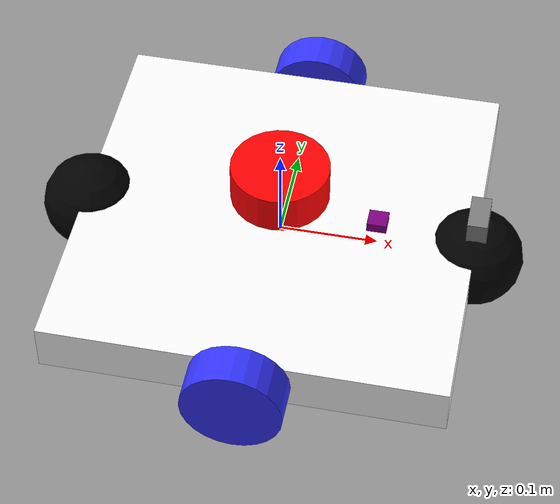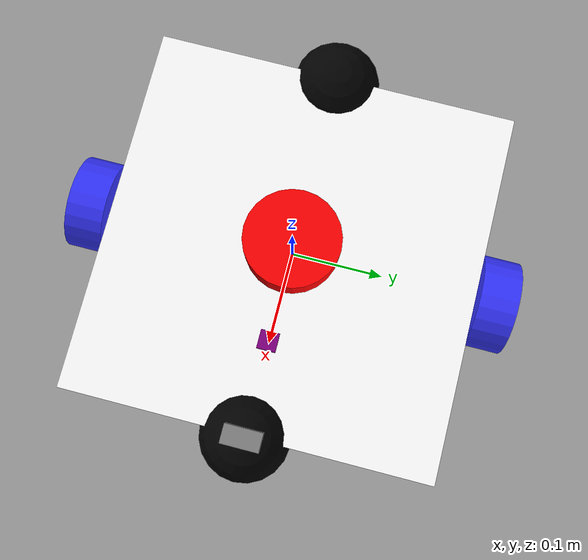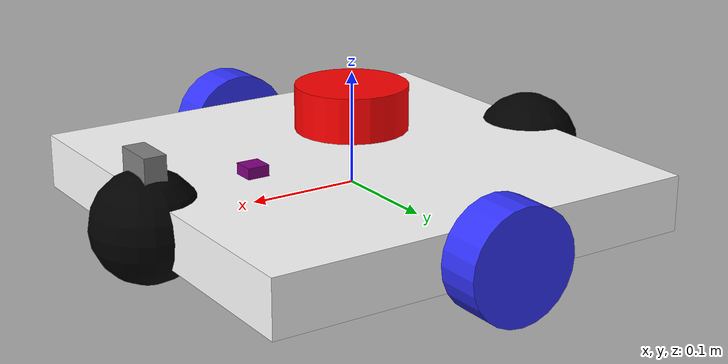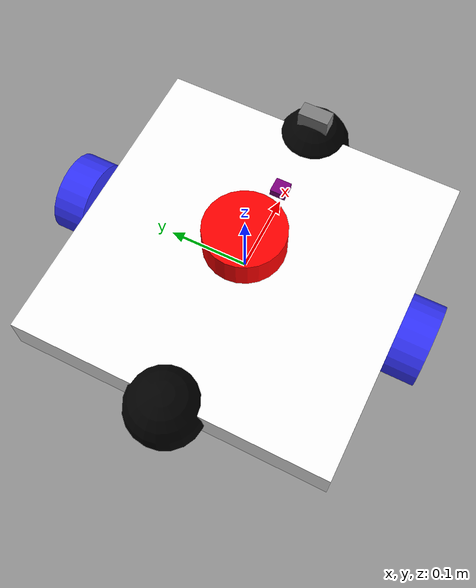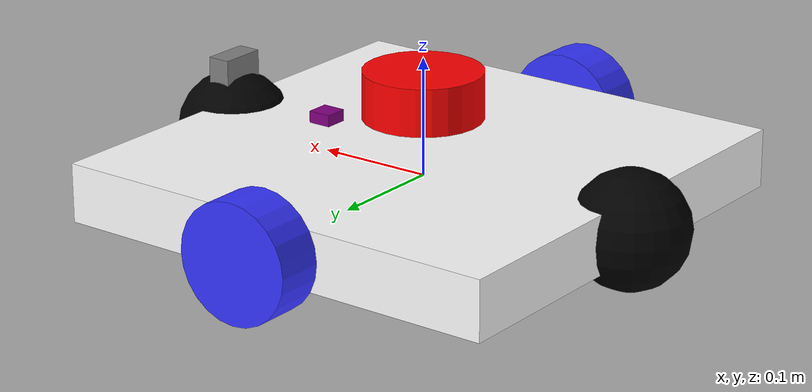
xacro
<?xml version="1.0"?>
<robot xmlns:xacro="http://www.ros.org/wiki/xacro" name="zulu_robot">

    <!-- Example link -->
    <xacro:include filename="properties.xacro"/>
    <xacro:include filename="robot_core.xacro"/>

    <!-- Lidar sensor -->
    <xacro:include filename="lidar.xacro"/>

    <!-- ros2_control -->
    <xacro:include filename="ros2_control.xacro"/>

    <!-- IMU -->
    <xacro:include filename="imu.xacro"/>

    <!-- CAMERA -->
    <xacro:include filename="camera.xacro"/>

</robot>

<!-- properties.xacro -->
<robot xmlns:xacro="http://www.ros.org/wiki/xacro">

    <!-- Colores Originales -->
    <material name="white">
        <color rgba="1 1 1 1"/>
    </material>

    <material name="orange">
        <color rgba="1 0.3 0.1 1"/>
    </material>

    <material name="blue">
        <color rgba="0.2 0.2 1 1"/>
    </material>

    <material name="black">
        <color rgba="0 0 0 1"/>
    </material>

    <material name="red">
        <color rgba="1 0 0 1"/>
    </material>

    <material name="purple">
        <color rgba="0.5 0.0 0.5 1"/>
    </material>

    <material name="pink">
        <color rgba="1.0 0.4 0.7 1"/>
    </material>

    <material name="green">
        <color rgba="0.0 0.8 0.0 1"/>
    </material>

    <material name="yellow">
        <color rgba="1.0 1.0 0.0 1"/>
    </material>

    <material name="gray">
        <color rgba="0.5 0.5 0.5 1"/>
    </material>

    <material name="cyan">
        <color rgba="0.0 1.0 1.0 1"/>
    </material>

    <material name="brown">
        <color rgba="0.6 0.4 0.2 1"/>
    </material>

</robot>

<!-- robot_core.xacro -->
<robot xmlns:xacro="http://www.ros.org/wiki/xacro">

    <!-- Example link -->
    <xacro:include filename="inertial_macros.xacro"/>

    <xacro:property name="rad_w" value="0.05"/>
    <xacro:property name="le_w" value="0.04"/>
    <xacro:property name="ly" value="0.4"/>
    <xacro:property name="lx" value="0.4"/>
    <xacro:property name="lz" value="0.05"/>

    <!-- Example link -->
    <link name="base_link">
    </link>

    <joint name="base_link_joint" type="fixed">
        <parent link="base_link"/>
        <child link="chassis"/>
        <origin xyz="0 0 0"/>
    </joint>

    <!-- chassis link -->
    <link name="chassis">
        <visual>
            <origin xyz="0 0 0"/>
            <geometry>
                <box size="${lx} ${ly} ${lz}"/>
            </geometry>
            <material name="white"/>
        </visual>
        <collision>
            <origin xyz="0 0 0"/>
            <geometry>
               <box size="${lx} ${ly} ${lz}"/>
            </geometry>
        </collision>
        <xacro:inertial_box mass="5.0" x="${lx}" y="${ly}" z="${lz}">
            <origin xyz="0 0 0" rpy="0 0 0"/>
        </xacro:inertial_box>
    </link>

    <!-- left wheel joint -->
    <joint name="left_wheel_joint" type="continuous">
        <parent link="chassis"/>
        <child link="left_wheel"/>
        <origin xyz="0 ${ly/2+le_w/2} 0.0" rpy="-${pi/2} 0 0"/>
        <axis xyz="0 0 1"/>
        <dynamics damping="0.2" friction="0.0"/>
    </joint>

    <!-- left wheel link -->
    <link name="left_wheel">
        <visual>
            <geometry>
                <cylinder radius="${rad_w}" length="${le_w}"/>
            </geometry>
            <material name="blue"/>
        </visual>
        <collision>
            <geometry>
                  <sphere radius="${rad_w}" />
            </geometry>

        </collision>
        <xacro:inertial_cylinder mass="0.1" length="${le_w}" radius="${rad_w}">
            <origin xyz="0 0 0" rpy="0 0 0"/>
        </xacro:inertial_cylinder>
    </link>

    <!-- right wheel joint -->
    <joint name="right_wheel_joint" type="continuous">
        <parent link="chassis"/>
        <child link="right_wheel"/>
        <origin xyz="0 -${ly/2+le_w/2} 0.0" rpy="${pi/2} 0 0"/>
        <axis xyz="0 0 -1"/>
        <dynamics damping="0.2" friction="0.0"/>
    </joint>

    <!-- right wheel link -->
    <link name="right_wheel">
        <visual>
            <geometry>
                <cylinder radius="${rad_w}" length="${le_w}"/>
            </geometry>
            <material name="blue"/>
        </visual>
        <collision>
            <geometry>
                  <sphere radius="${rad_w}" />
            </geometry>

        </collision>
        <xacro:inertial_cylinder mass="0.1" length="${le_w}" radius="${rad_w}">
            <origin xyz="0 0 0" rpy="0 0 0"/>
        </xacro:inertial_cylinder>
    </link>

    <!-- caster wheel joint -->
    <joint name="caster_front_wheel_joint" type="fixed">
        <parent link="chassis"/>
        <child link="caster_front_wheel"/>
        <origin xyz="${lx/2} 0 0.0"/>
    </joint>

    <!-- left wheel link -->
    <link name="caster_front_wheel">
        <visual>
            <geometry>
                <sphere radius="0.049"/>
            </geometry>
            <material name="black"/>
        </visual>
        <collision>
            <geometry>
                <sphere radius="0.049"/>
            </geometry>
            <surface>
                <friction>
                <ode>
                    <mu>0.01</mu>
                    <mu2>0.01</mu2>
                </ode>
                </friction>
            </surface>
        </collision>
        <xacro:inertial_sphere mass="0.1" radius="0.049">
            <origin xyz="0 0 0" rpy="0 0 0"/>
        </xacro:inertial_sphere>
    </link>

     <!-- caster wheel joint -->
    <joint name="caster_rear_wheel_joint" type="fixed">
        <parent link="chassis"/>
        <child link="caster_rear_wheel"/>
        <origin xyz="${-lx/2} 0 0.0"/>
    </joint>

    <!-- left wheel link -->
    <link name="caster_rear_wheel">
        <visual>
            <geometry>
                <sphere radius="0.049"/>
            </geometry>
            <material name="black"/>
        </visual>
        <collision>
            <geometry>
                <sphere radius="0.049"/>
            </geometry>
            <surface>
                <friction>
                <ode>
                    <mu>0.01</mu>
                    <mu2>0.01</mu2>
                </ode>
                </friction>
            </surface>
        </collision>
        <xacro:inertial_sphere mass="0.1" radius="0.049">
            <origin xyz="0 0 0" rpy="0 0 0"/>
        </xacro:inertial_sphere>
    </link>

    <!-- Friccion -->
    <!-- m1 agarre de la llanta hacia adelante y hacia atrás. -->
    <!-- m2 agarre lateral de la llanta -->
    <!-- kp dureza física del material de la llanta-->
    <!-- kd capacidad del material para absorber impactos sin rebotar -->

    <gazebo reference="left_wheel">
        <mu1>1.0</mu1>
        <mu2>1.0</mu2>
        <kp>1000000.0</kp>
        <kd>100.0</kd>
        <minDepth>0.001</minDepth>
    </gazebo>

    <gazebo reference="right_wheel">
        <mu1>1.0</mu1>
        <mu2>1.0</mu2>
        <kp>1000000.0</kp>
        <kd>100.0</kd>
        <minDepth>0.001</minDepth>
    </gazebo>

    <!-- Caster -->
    <gazebo reference="caster_front_wheel">
        <mu1>0.001</mu1>
        <mu2>0.001</mu2>
        <kp>1000000.0</kp>
        <kd>100.0</kd>
        <minDepth>0.001</minDepth>
    </gazebo>

    <gazebo reference="caster_rear_wheel">
        <mu1>0.001</mu1>
        <mu2>0.001</mu2>
        <kp>1000000.0</kp>
        <kd>100.0</kd>
        <minDepth>0.001</minDepth>
    </gazebo>

</robot>

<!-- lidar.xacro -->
<robot xmlns:xacro="http://www.ros.org/wiki/xacro" >

    <!-- Lidar link -->
    <link name="lidar_link">
         <visual>
            <geometry>
                <cylinder radius="${rad_w}" length="${le_w}"/>
            </geometry>
            <material name="red"/>
        </visual>
        <collision>
            <geometry>
                <cylinder radius="${rad_w}" length="${le_w}"/>
            </geometry>
        </collision>
        <xacro:inertial_cylinder mass="0.1" length="${le_w}" radius="${rad_w}">
            <origin xyz="0 0 0" rpy="0 0 0"/>
        </xacro:inertial_cylinder>
    </link>

    <joint name="lidar_chassis_joint" type="fixed">
        <parent link="chassis"/>
        <child link="lidar_link"/>
        <origin xyz="0 0 ${le_w/2+lz}" rpy="0 0 0"/>
    </joint>

    <gazebo reference="lidar_link">
    <sensor name="lidar" type="gpu_lidar">
        <always_on>true</always_on>
        <update_rate>20</update_rate>
        <visualize>true</visualize>
        <topic>scan</topic>
        <gz_frame_id>lidar_link</gz_frame_id> <!-- CUIDADO CON ESTE NOMBRE -->

        <lidar>
        <scan>
            <horizontal>
            <samples>720</samples>
            <min_angle>-1.57079632679</min_angle>
            <max_angle>1.57079632679</max_angle>
            </horizontal>
        </scan>
        <range>
            <min>0.12</min>
            <max>12.0</max>
        </range>
        </lidar>
    </sensor>
    </gazebo>

</robot>

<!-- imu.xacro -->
<robot xmlns:xacro="http://www.ros.org/wiki/xacro">

    <link name="imu_link">
        <visual>
            <geometry>
                <box size="0.02 0.02 0.01"/>
            </geometry>
            <material name="purple"/>
        </visual>
        <collision>
            <geometry>
                <box size="0.02 0.02 0.01"/>
            </geometry>
        </collision>
        <xacro:inertial_box mass="0.05" x="0.02" y="0.02" z="0.01">
            <origin xyz="0 0 0" rpy="0 0 0"/>
        </xacro:inertial_box>
    </link>

    <joint name="imu_joint" type="fixed">
        <parent link="chassis"/>
        <child link="imu_link"/>
        <origin xyz="${(lx/2)-0.1} 0 ${(lz/2) + 0.005}" rpy="0 0 0"/>
    </joint>

    <gazebo reference="imu_link">
        <sensor name="imu_sensor" type="imu">
            <always_on>1</always_on>
            <update_rate>100</update_rate>
            <visualize>true</visualize>
            <topic>imu</topic>
            <gz_frame_id>imu_link</gz_frame_id>
        </sensor>
    </gazebo>

</robot>

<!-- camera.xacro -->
<robot xmlns:xacro="http://www.ros.org/wiki/xacro">

    <link name="camera_link">
        <visual>
            <geometry>
                <box size="0.02 0.04 0.04"/>
            </geometry>
            <material name="gray"/>
        </visual>
        <collision>
            <geometry>
                <box size="0.02 0.04 0.04"/>
            </geometry>
        </collision>
        <xacro:inertial_box mass="0.1" x="0.02" y="0.04" z="0.04">
            <origin xyz="0 0 0" rpy="0 0 0"/>
        </xacro:inertial_box>
    </link>

    <joint name="camera_joint" type="fixed">
        <parent link="chassis"/>
        <child link="camera_link"/>
        <origin xyz="${lx/2} 0 ${(lz/2) + 0.02}" rpy="0 0 0"/>
    </joint>

    <gazebo reference="camera_link">
        <sensor name="camera_sensor" type="camera">
            <update_rate>30.0</update_rate>
            <always_on>true</always_on>
            <visualize>true</visualize>
            <topic>/camera/image_raw</topic>
            <gz_frame_id>camera_link</gz_frame_id>

            <camera>
                <horizontal_fov>1.047</horizontal_fov>
                <image>
                    <width>640</width>
                    <height>480</height>
                    <format>R8G8B8</format>
                </image>
                <clip>
                    <near>0.1</near>
                    <far>100.0</far>
                </clip>
            </camera>
        </sensor>
    </gazebo>

</robot>
